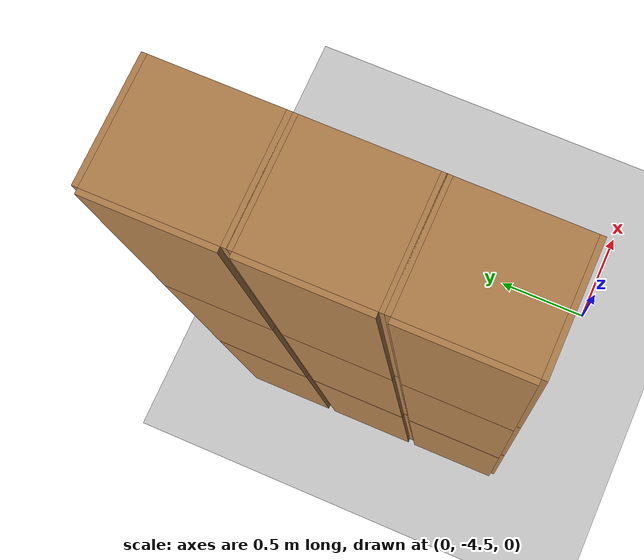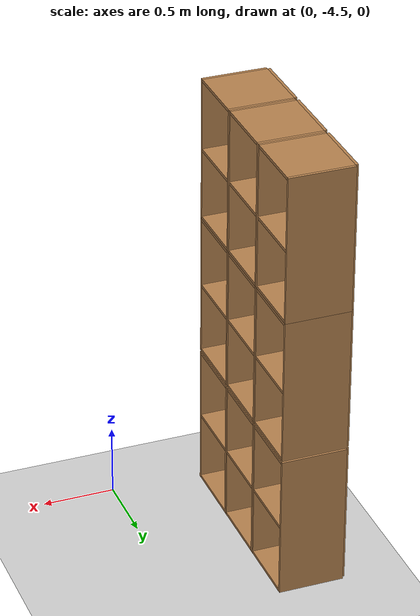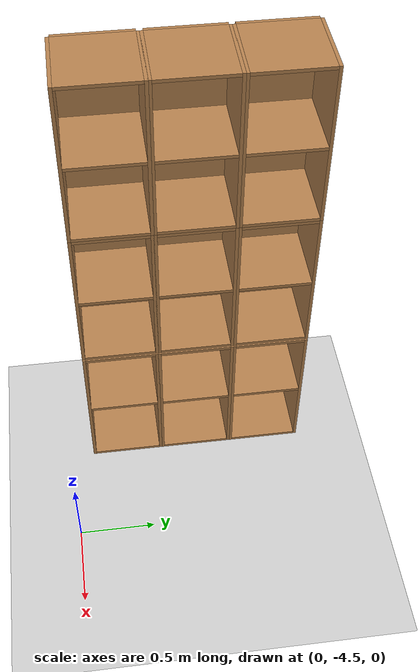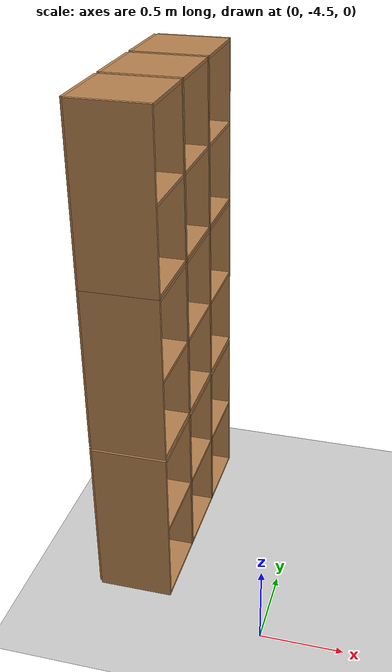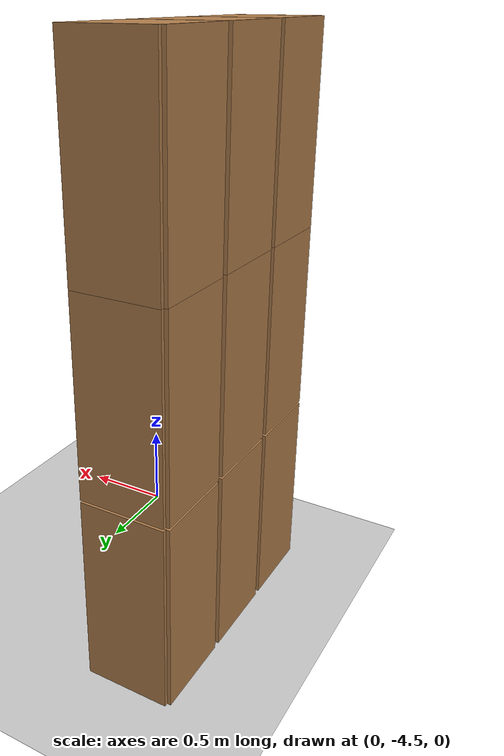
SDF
<sdf version="1.6">
 <world name="default">
  <model name="ground_plane">
   <static>1</static>
   <link name="link">
    <collision name="collision">
     <geometry><plane><normal>0 0 1</normal><size>100 100</size></plane></geometry>
     <surface>
      <contact><collide_bitmask>65535</collide_bitmask></contact>
      <friction><ode><mu>100</mu><mu2>50</mu2></ode></friction>
     </surface>
    </collision>
    <visual name="visual">
     <cast_shadows>0</cast_shadows>
     <geometry><plane><normal>0 0 1</normal><size>100 100</size></plane></geometry>
     <material>
      <script><uri>file://media/materials/scripts/gazebo.material</uri><name>Gazebo/Grey</name></script>
     </material>
    </visual>
   </link>
  </model>
  <model name="Locker18_clone_4_clone_2_clone_1_clone_clone_clone_2_clone_clone_2_clone_clone">
   <model name="Locker18">
    <model name="Locker3">
     <model name="cabinet">
      <static>1</static>
      <link name="cabinet_bottom_plate">
       <inertial>
        <pose>0 0 -1 0 -0 0</pose>
        <inertia><ixx>2.05</ixx><ixy>0</ixy><ixz>0</ixz><iyy>2.05</iyy><iyz>0</iyz><izz>2.05</izz></inertia>
        <mass>25</mass>
       </inertial>
       <collision name="cabinet_bottom_plate_geom">
        <pose>0 0 0.01 0 -0 0</pose>
        <geometry><box><size>0.45 0.45 0.02</size></box></geometry>
       </collision>
       <visual name="cabinet_bottom_plate_geom_visual">
        <pose>0 0 0.01 0 -0 0</pose>
        <geometry><box><size>0.45 0.45 0.02</size></box></geometry>
        <material>
         <script><uri>file://media/materials/scripts/gazebo.material</uri><name>Gazebo/Wood</name></script>
        </material>
       </visual>
       <collision name="cabinet_bottom_plate_geom_cabinet_back_plate">
        <pose>0.235 0 0.51 0 -0 0</pose>
        <geometry><box><size>0.02 0.45 1.02</size></box></geometry>
       </collision>
       <visual name="cabinet_bottom_plate_geom_cabinet_back_plate_visual">
        <pose>0.235 0 0.51 0 -0 0</pose>
        <geometry><box><size>0.02 0.45 1.02</size></box></geometry>
        <material>
         <script><uri>file://media/materials/scripts/gazebo.material</uri><name>Gazebo/Wood</name></script>
        </material>
       </visual>
       <collision name="cabinet_bottom_plate_geom_cabinet_left_plate">
        <pose>0 0.235 0.51 0 -0 0</pose>
        <geometry><box><size>0.45 0.02 1.02</size></box></geometry>
       </collision>
       <visual name="cabinet_bottom_plate_geom_cabinet_left_plate_visual">
        <pose>0 0.235 0.51 0 -0 0</pose>
        <geometry><box><size>0.45 0.02 1.02</size></box></geometry>
        <material>
         <script><uri>file://media/materials/scripts/gazebo.material</uri><name>Gazebo/Wood</name></script>
        </material>
       </visual>
       <collision name="cabinet_bottom_plate_geom_cabinet_middle_plate">
        <pose>0 0 0.51 0 -0 0</pose>
        <geometry><box><size>0.45 0.45 0.02</size></box></geometry>
       </collision>
       <visual name="cabinet_bottom_plate_geom_cabinet_middle_plate_visual">
        <pose>0 0 0.51 0 -0 0</pose>
        <geometry><box><size>0.45 0.45 0.02</size></box></geometry>
        <material>
         <script><uri>file://media/materials/scripts/gazebo.material</uri><name>Gazebo/Wood</name></script>
        </material>
       </visual>
       <collision name="cabinet_bottom_plate_geom_cabinet_right_plate">
        <pose>0 -0.235 0.51 0 -0 0</pose>
        <geometry><box><size>0.45 0.02 1.02</size></box></geometry>
       </collision>
       <visual name="cabinet_bottom_plate_geom_cabinet_right_plate_visual">
        <pose>0 -0.235 0.51 0 -0 0</pose>
        <geometry><box><size>0.45 0.02 1.02</size></box></geometry>
        <material>
         <script><uri>file://media/materials/scripts/gazebo.material</uri><name>Gazebo/Wood</name></script>
        </material>
       </visual>
       <collision name="cabinet_bottom_plate_geom_cabinet_top_plate">
        <pose>0 0 1.01 0 -0 0</pose>
        <geometry><box><size>0.45 0.45 0.02</size></box></geometry>
       </collision>
       <visual name="cabinet_bottom_plate_geom_cabinet_top_plate_visual">
        <pose>0 0 1.01 0 -0 0</pose>
        <geometry><box><size>0.45 0.45 0.02</size></box></geometry>
        <material>
         <script><uri>file://media/materials/scripts/gazebo.material</uri><name>Gazebo/Wood</name></script>
        </material>
       </visual>
      </link>
      <pose>-0.676968 1.45758 0 0 -0 0</pose>
     </model>
     <model name="cabinet_clone">
      <static>1</static>
      <link name="cabinet_bottom_plate">
       <inertial>
        <pose>0 0 -1 0 -0 0</pose>
        <inertia><ixx>2.05</ixx><ixy>0</ixy><ixz>0</ixz><iyy>2.05</iyy><iyz>0</iyz><izz>2.05</izz></inertia>
        <mass>25</mass>
       </inertial>
       <collision name="cabinet_bottom_plate_geom">
        <pose>0 0 0.01 0 -0 0</pose>
        <geometry><box><size>0.45 0.45 0.02</size></box></geometry>
       </collision>
       <visual name="cabinet_bottom_plate_geom_visual">
        <pose>0 0 0.01 0 -0 0</pose>
        <geometry><box><size>0.45 0.45 0.02</size></box></geometry>
        <material>
         <script><uri>file://media/materials/scripts/gazebo.material</uri><name>Gazebo/Wood</name></script>
        </material>
       </visual>
       <collision name="cabinet_bottom_plate_geom_cabinet_back_plate">
        <pose>0.235 0 0.51 0 -0 0</pose>
        <geometry><box><size>0.02 0.45 1.02</size></box></geometry>
       </collision>
       <visual name="cabinet_bottom_plate_geom_cabinet_back_plate_visual">
        <pose>0.235 0 0.51 0 -0 0</pose>
        <geometry><box><size>0.02 0.45 1.02</size></box></geometry>
        <material>
         <script><uri>file://media/materials/scripts/gazebo.material</uri><name>Gazebo/Wood</name></script>
        </material>
       </visual>
       <collision name="cabinet_bottom_plate_geom_cabinet_left_plate">
        <pose>0 0.235 0.51 0 -0 0</pose>
        <geometry><box><size>0.45 0.02 1.02</size></box></geometry>
       </collision>
       <visual name="cabinet_bottom_plate_geom_cabinet_left_plate_visual">
        <pose>0 0.235 0.51 0 -0 0</pose>
        <geometry><box><size>0.45 0.02 1.02</size></box></geometry>
        <material>
         <script><uri>file://media/materials/scripts/gazebo.material</uri><name>Gazebo/Wood</name></script>
        </material>
       </visual>
       <collision name="cabinet_bottom_plate_geom_cabinet_middle_plate">
        <pose>0 0 0.51 0 -0 0</pose>
        <geometry><box><size>0.45 0.45 0.02</size></box></geometry>
       </collision>
       <visual name="cabinet_bottom_plate_geom_cabinet_middle_plate_visual">
        <pose>0 0 0.51 0 -0 0</pose>
        <geometry><box><size>0.45 0.45 0.02</size></box></geometry>
        <material>
         <script><uri>file://media/materials/scripts/gazebo.material</uri><name>Gazebo/Wood</name></script>
        </material>
       </visual>
       <collision name="cabinet_bottom_plate_geom_cabinet_right_plate">
        <pose>0 -0.235 0.51 0 -0 0</pose>
        <geometry><box><size>0.45 0.02 1.02</size></box></geometry>
       </collision>
       <visual name="cabinet_bottom_plate_geom_cabinet_right_plate_visual">
        <pose>0 -0.235 0.51 0 -0 0</pose>
        <geometry><box><size>0.45 0.02 1.02</size></box></geometry>
        <material>
         <script><uri>file://media/materials/scripts/gazebo.material</uri><name>Gazebo/Wood</name></script>
        </material>
       </visual>
       <collision name="cabinet_bottom_plate_geom_cabinet_top_plate">
        <pose>0 0 1.01 0 -0 0</pose>
        <geometry><box><size>0.45 0.45 0.02</size></box></geometry>
       </collision>
       <visual name="cabinet_bottom_plate_geom_cabinet_top_plate_visual">
        <pose>0 0 1.01 0 -0 0</pose>
        <geometry><box><size>0.45 0.45 0.02</size></box></geometry>
        <material>
         <script><uri>file://media/materials/scripts/gazebo.material</uri><name>Gazebo/Wood</name></script>
        </material>
       </visual>
      </link>
      <pose>-0.676968 0.970971 0 0 -0 0</pose>
     </model>
     <model name="cabinet_clone_0">
      <static>1</static>
      <link name="cabinet_bottom_plate">
       <inertial>
        <pose>0 0 -1 0 -0 0</pose>
        <inertia><ixx>2.05</ixx><ixy>0</ixy><ixz>0</ixz><iyy>2.05</iyy><iyz>0</iyz><izz>2.05</izz></inertia>
        <mass>25</mass>
       </inertial>
       <collision name="cabinet_bottom_plate_geom">
        <pose>0 0 0.01 0 -0 0</pose>
        <geometry><box><size>0.45 0.45 0.02</size></box></geometry>
       </collision>
       <visual name="cabinet_bottom_plate_geom_visual">
        <pose>0 0 0.01 0 -0 0</pose>
        <geometry><box><size>0.45 0.45 0.02</size></box></geometry>
        <material>
         <script><uri>file://media/materials/scripts/gazebo.material</uri><name>Gazebo/Wood</name></script>
        </material>
       </visual>
       <collision name="cabinet_bottom_plate_geom_cabinet_back_plate">
        <pose>0.235 0 0.51 0 -0 0</pose>
        <geometry><box><size>0.02 0.45 1.02</size></box></geometry>
       </collision>
       <visual name="cabinet_bottom_plate_geom_cabinet_back_plate_visual">
        <pose>0.235 0 0.51 0 -0 0</pose>
        <geometry><box><size>0.02 0.45 1.02</size></box></geometry>
        <material>
         <script><uri>file://media/materials/scripts/gazebo.material</uri><name>Gazebo/Wood</name></script>
        </material>
       </visual>
       <collision name="cabinet_bottom_plate_geom_cabinet_left_plate">
        <pose>0 0.235 0.51 0 -0 0</pose>
        <geometry><box><size>0.45 0.02 1.02</size></box></geometry>
       </collision>
       <visual name="cabinet_bottom_plate_geom_cabinet_left_plate_visual">
        <pose>0 0.235 0.51 0 -0 0</pose>
        <geometry><box><size>0.45 0.02 1.02</size></box></geometry>
        <material>
         <script><uri>file://media/materials/scripts/gazebo.material</uri><name>Gazebo/Wood</name></script>
        </material>
       </visual>
       <collision name="cabinet_bottom_plate_geom_cabinet_middle_plate">
        <pose>0 0 0.51 0 -0 0</pose>
        <geometry><box><size>0.45 0.45 0.02</size></box></geometry>
       </collision>
       <visual name="cabinet_bottom_plate_geom_cabinet_middle_plate_visual">
        <pose>0 0 0.51 0 -0 0</pose>
        <geometry><box><size>0.45 0.45 0.02</size></box></geometry>
        <material>
         <script><uri>file://media/materials/scripts/gazebo.material</uri><name>Gazebo/Wood</name></script>
        </material>
       </visual>
       <collision name="cabinet_bottom_plate_geom_cabinet_right_plate">
        <pose>0 -0.235 0.51 0 -0 0</pose>
        <geometry><box><size>0.45 0.02 1.02</size></box></geometry>
       </collision>
       <visual name="cabinet_bottom_plate_geom_cabinet_right_plate_visual">
        <pose>0 -0.235 0.51 0 -0 0</pose>
        <geometry><box><size>0.45 0.02 1.02</size></box></geometry>
        <material>
         <script><uri>file://media/materials/scripts/gazebo.material</uri><name>Gazebo/Wood</name></script>
        </material>
       </visual>
       <collision name="cabinet_bottom_plate_geom_cabinet_top_plate">
        <pose>0 0 1.01 0 -0 0</pose>
        <geometry><box><size>0.45 0.45 0.02</size></box></geometry>
       </collision>
       <visual name="cabinet_bottom_plate_geom_cabinet_top_plate_visual">
        <pose>0 0 1.01 0 -0 0</pose>
        <geometry><box><size>0.45 0.45 0.02</size></box></geometry>
        <material>
         <script><uri>file://media/materials/scripts/gazebo.material</uri><name>Gazebo/Wood</name></script>
        </material>
       </visual>
      </link>
      <pose>-0.676968 0.48391 0 0 -0 0</pose>
     </model>
     <static>0</static>
     <pose>0 3e-06 -1.02763 0 -0 0</pose>
    </model>
    <model name="Locker3_clone">
     <model name="cabinet">
      <static>1</static>
      <link name="cabinet_bottom_plate">
       <inertial>
        <pose>0 0 -1 0 -0 0</pose>
        <inertia><ixx>2.05</ixx><ixy>0</ixy><ixz>0</ixz><iyy>2.05</iyy><iyz>0</iyz><izz>2.05</izz></inertia>
        <mass>25</mass>
       </inertial>
       <collision name="cabinet_bottom_plate_geom">
        <pose>0 0 0.01 0 -0 0</pose>
        <geometry><box><size>0.45 0.45 0.02</size></box></geometry>
       </collision>
       <visual name="cabinet_bottom_plate_geom_visual">
        <pose>0 0 0.01 0 -0 0</pose>
        <geometry><box><size>0.45 0.45 0.02</size></box></geometry>
        <material>
         <script><uri>file://media/materials/scripts/gazebo.material</uri><name>Gazebo/Wood</name></script>
        </material>
       </visual>
       <collision name="cabinet_bottom_plate_geom_cabinet_back_plate">
        <pose>0.235 0 0.51 0 -0 0</pose>
        <geometry><box><size>0.02 0.45 1.02</size></box></geometry>
       </collision>
       <visual name="cabinet_bottom_plate_geom_cabinet_back_plate_visual">
        <pose>0.235 0 0.51 0 -0 0</pose>
        <geometry><box><size>0.02 0.45 1.02</size></box></geometry>
        <material>
         <script><uri>file://media/materials/scripts/gazebo.material</uri><name>Gazebo/Wood</name></script>
        </material>
       </visual>
       <collision name="cabinet_bottom_plate_geom_cabinet_left_plate">
        <pose>0 0.235 0.51 0 -0 0</pose>
        <geometry><box><size>0.45 0.02 1.02</size></box></geometry>
       </collision>
       <visual name="cabinet_bottom_plate_geom_cabinet_left_plate_visual">
        <pose>0 0.235 0.51 0 -0 0</pose>
        <geometry><box><size>0.45 0.02 1.02</size></box></geometry>
        <material>
         <script><uri>file://media/materials/scripts/gazebo.material</uri><name>Gazebo/Wood</name></script>
        </material>
       </visual>
       <collision name="cabinet_bottom_plate_geom_cabinet_middle_plate">
        <pose>0 0 0.51 0 -0 0</pose>
        <geometry><box><size>0.45 0.45 0.02</size></box></geometry>
       </collision>
       <visual name="cabinet_bottom_plate_geom_cabinet_middle_plate_visual">
        <pose>0 0 0.51 0 -0 0</pose>
        <geometry><box><size>0.45 0.45 0.02</size></box></geometry>
        <material>
         <script><uri>file://media/materials/scripts/gazebo.material</uri><name>Gazebo/Wood</name></script>
        </material>
       </visual>
       <collision name="cabinet_bottom_plate_geom_cabinet_right_plate">
        <pose>0 -0.235 0.51 0 -0 0</pose>
        <geometry><box><size>0.45 0.02 1.02</size></box></geometry>
       </collision>
       <visual name="cabinet_bottom_plate_geom_cabinet_right_plate_visual">
        <pose>0 -0.235 0.51 0 -0 0</pose>
        <geometry><box><size>0.45 0.02 1.02</size></box></geometry>
        <material>
         <script><uri>file://media/materials/scripts/gazebo.material</uri><name>Gazebo/Wood</name></script>
        </material>
       </visual>
       <collision name="cabinet_bottom_plate_geom_cabinet_top_plate">
        <pose>0 0 1.01 0 -0 0</pose>
        <geometry><box><size>0.45 0.45 0.02</size></box></geometry>
       </collision>
       <visual name="cabinet_bottom_plate_geom_cabinet_top_plate_visual">
        <pose>0 0 1.01 0 -0 0</pose>
        <geometry><box><size>0.45 0.45 0.02</size></box></geometry>
        <material>
         <script><uri>file://media/materials/scripts/gazebo.material</uri><name>Gazebo/Wood</name></script>
        </material>
       </visual>
      </link>
      <pose>-0.676968 1.45758 0 0 -0 0</pose>
     </model>
     <model name="cabinet_clone">
      <static>1</static>
      <link name="cabinet_bottom_plate">
       <inertial>
        <pose>0 0 -1 0 -0 0</pose>
        <inertia><ixx>2.05</ixx><ixy>0</ixy><ixz>0</ixz><iyy>2.05</iyy><iyz>0</iyz><izz>2.05</izz></inertia>
        <mass>25</mass>
       </inertial>
       <collision name="cabinet_bottom_plate_geom">
        <pose>0 0 0.01 0 -0 0</pose>
        <geometry><box><size>0.45 0.45 0.02</size></box></geometry>
       </collision>
       <visual name="cabinet_bottom_plate_geom_visual">
        <pose>0 0 0.01 0 -0 0</pose>
        <geometry><box><size>0.45 0.45 0.02</size></box></geometry>
        <material>
         <script><uri>file://media/materials/scripts/gazebo.material</uri><name>Gazebo/Wood</name></script>
        </material>
       </visual>
       <collision name="cabinet_bottom_plate_geom_cabinet_back_plate">
        <pose>0.235 0 0.51 0 -0 0</pose>
        <geometry><box><size>0.02 0.45 1.02</size></box></geometry>
       </collision>
       <visual name="cabinet_bottom_plate_geom_cabinet_back_plate_visual">
        <pose>0.235 0 0.51 0 -0 0</pose>
        <geometry><box><size>0.02 0.45 1.02</size></box></geometry>
        <material>
         <script><uri>file://media/materials/scripts/gazebo.material</uri><name>Gazebo/Wood</name></script>
        </material>
       </visual>
       <collision name="cabinet_bottom_plate_geom_cabinet_left_plate">
        <pose>0 0.235 0.51 0 -0 0</pose>
        <geometry><box><size>0.45 0.02 1.02</size></box></geometry>
       </collision>
       <visual name="cabinet_bottom_plate_geom_cabinet_left_plate_visual">
        <pose>0 0.235 0.51 0 -0 0</pose>
        <geometry><box><size>0.45 0.02 1.02</size></box></geometry>
        <material>
         <script><uri>file://media/materials/scripts/gazebo.material</uri><name>Gazebo/Wood</name></script>
        </material>
       </visual>
       <collision name="cabinet_bottom_plate_geom_cabinet_middle_plate">
        <pose>0 0 0.51 0 -0 0</pose>
        <geometry><box><size>0.45 0.45 0.02</size></box></geometry>
       </collision>
       <visual name="cabinet_bottom_plate_geom_cabinet_middle_plate_visual">
        <pose>0 0 0.51 0 -0 0</pose>
        <geometry><box><size>0.45 0.45 0.02</size></box></geometry>
        <material>
         <script><uri>file://media/materials/scripts/gazebo.material</uri><name>Gazebo/Wood</name></script>
        </material>
       </visual>
       <collision name="cabinet_bottom_plate_geom_cabinet_right_plate">
        <pose>0 -0.235 0.51 0 -0 0</pose>
        <geometry><box><size>0.45 0.02 1.02</size></box></geometry>
       </collision>
       <visual name="cabinet_bottom_plate_geom_cabinet_right_plate_visual">
        <pose>0 -0.235 0.51 0 -0 0</pose>
        <geometry><box><size>0.45 0.02 1.02</size></box></geometry>
        <material>
         <script><uri>file://media/materials/scripts/gazebo.material</uri><name>Gazebo/Wood</name></script>
        </material>
       </visual>
       <collision name="cabinet_bottom_plate_geom_cabinet_top_plate">
        <pose>0 0 1.01 0 -0 0</pose>
        <geometry><box><size>0.45 0.45 0.02</size></box></geometry>
       </collision>
       <visual name="cabinet_bottom_plate_geom_cabinet_top_plate_visual">
        <pose>0 0 1.01 0 -0 0</pose>
        <geometry><box><size>0.45 0.45 0.02</size></box></geometry>
        <material>
         <script><uri>file://media/materials/scripts/gazebo.material</uri><name>Gazebo/Wood</name></script>
        </material>
       </visual>
      </link>
      <pose>-0.676968 0.970971 0 0 -0 0</pose>
     </model>
     <model name="cabinet_clone_0">
      <static>1</static>
      <link name="cabinet_bottom_plate">
       <inertial>
        <pose>0 0 -1 0 -0 0</pose>
        <inertia><ixx>2.05</ixx><ixy>0</ixy><ixz>0</ixz><iyy>2.05</iyy><iyz>0</iyz><izz>2.05</izz></inertia>
        <mass>25</mass>
       </inertial>
       <collision name="cabinet_bottom_plate_geom">
        <pose>0 0 0.01 0 -0 0</pose>
        <geometry><box><size>0.45 0.45 0.02</size></box></geometry>
       </collision>
       <visual name="cabinet_bottom_plate_geom_visual">
        <pose>0 0 0.01 0 -0 0</pose>
        <geometry><box><size>0.45 0.45 0.02</size></box></geometry>
        <material>
         <script><uri>file://media/materials/scripts/gazebo.material</uri><name>Gazebo/Wood</name></script>
        </material>
       </visual>
       <collision name="cabinet_bottom_plate_geom_cabinet_back_plate">
        <pose>0.235 0 0.51 0 -0 0</pose>
        <geometry><box><size>0.02 0.45 1.02</size></box></geometry>
       </collision>
       <visual name="cabinet_bottom_plate_geom_cabinet_back_plate_visual">
        <pose>0.235 0 0.51 0 -0 0</pose>
        <geometry><box><size>0.02 0.45 1.02</size></box></geometry>
        <material>
         <script><uri>file://media/materials/scripts/gazebo.material</uri><name>Gazebo/Wood</name></script>
        </material>
       </visual>
       <collision name="cabinet_bottom_plate_geom_cabinet_left_plate">
        <pose>0 0.235 0.51 0 -0 0</pose>
        <geometry><box><size>0.45 0.02 1.02</size></box></geometry>
       </collision>
       <visual name="cabinet_bottom_plate_geom_cabinet_left_plate_visual">
        <pose>0 0.235 0.51 0 -0 0</pose>
        <geometry><box><size>0.45 0.02 1.02</size></box></geometry>
        <material>
         <script><uri>file://media/materials/scripts/gazebo.material</uri><name>Gazebo/Wood</name></script>
        </material>
       </visual>
       <collision name="cabinet_bottom_plate_geom_cabinet_middle_plate">
        <pose>0 0 0.51 0 -0 0</pose>
        <geometry><box><size>0.45 0.45 0.02</size></box></geometry>
       </collision>
       <visual name="cabinet_bottom_plate_geom_cabinet_middle_plate_visual">
        <pose>0 0 0.51 0 -0 0</pose>
        <geometry><box><size>0.45 0.45 0.02</size></box></geometry>
        <material>
         <script><uri>file://media/materials/scripts/gazebo.material</uri><name>Gazebo/Wood</name></script>
        </material>
       </visual>
       <collision name="cabinet_bottom_plate_geom_cabinet_right_plate">
        <pose>0 -0.235 0.51 0 -0 0</pose>
        <geometry><box><size>0.45 0.02 1.02</size></box></geometry>
       </collision>
       <visual name="cabinet_bottom_plate_geom_cabinet_right_plate_visual">
        <pose>0 -0.235 0.51 0 -0 0</pose>
        <geometry><box><size>0.45 0.02 1.02</size></box></geometry>
        <material>
         <script><uri>file://media/materials/scripts/gazebo.material</uri><name>Gazebo/Wood</name></script>
        </material>
       </visual>
       <collision name="cabinet_bottom_plate_geom_cabinet_top_plate">
        <pose>0 0 1.01 0 -0 0</pose>
        <geometry><box><size>0.45 0.45 0.02</size></box></geometry>
       </collision>
       <visual name="cabinet_bottom_plate_geom_cabinet_top_plate_visual">
        <pose>0 0 1.01 0 -0 0</pose>
        <geometry><box><size>0.45 0.45 0.02</size></box></geometry>
        <material>
         <script><uri>file://media/materials/scripts/gazebo.material</uri><name>Gazebo/Wood</name></script>
        </material>
       </visual>
      </link>
      <pose>-0.676968 0.48391 0 0 -0 0</pose>
     </model>
     <static>0</static>
     <pose>0 3e-06 0.003717 0 -0 0</pose>
    </model>
    <model name="Locker3_clone_clone">
     <model name="cabinet">
      <static>1</static>
      <link name="cabinet_bottom_plate">
       <inertial>
        <pose>0 0 -1 0 -0 0</pose>
        <inertia><ixx>2.05</ixx><ixy>0</ixy><ixz>0</ixz><iyy>2.05</iyy><iyz>0</iyz><izz>2.05</izz></inertia>
        <mass>25</mass>
       </inertial>
       <collision name="cabinet_bottom_plate_geom">
        <pose>0 0 0.01 0 -0 0</pose>
        <geometry><box><size>0.45 0.45 0.02</size></box></geometry>
       </collision>
       <visual name="cabinet_bottom_plate_geom_visual">
        <pose>0 0 0.01 0 -0 0</pose>
        <geometry><box><size>0.45 0.45 0.02</size></box></geometry>
        <material>
         <script><uri>file://media/materials/scripts/gazebo.material</uri><name>Gazebo/Wood</name></script>
        </material>
       </visual>
       <collision name="cabinet_bottom_plate_geom_cabinet_back_plate">
        <pose>0.235 0 0.51 0 -0 0</pose>
        <geometry><box><size>0.02 0.45 1.02</size></box></geometry>
       </collision>
       <visual name="cabinet_bottom_plate_geom_cabinet_back_plate_visual">
        <pose>0.235 0 0.51 0 -0 0</pose>
        <geometry><box><size>0.02 0.45 1.02</size></box></geometry>
        <material>
         <script><uri>file://media/materials/scripts/gazebo.material</uri><name>Gazebo/Wood</name></script>
        </material>
       </visual>
       <collision name="cabinet_bottom_plate_geom_cabinet_left_plate">
        <pose>0 0.235 0.51 0 -0 0</pose>
        <geometry><box><size>0.45 0.02 1.02</size></box></geometry>
       </collision>
       <visual name="cabinet_bottom_plate_geom_cabinet_left_plate_visual">
        <pose>0 0.235 0.51 0 -0 0</pose>
        <geometry><box><size>0.45 0.02 1.02</size></box></geometry>
        <material>
         <script><uri>file://media/materials/scripts/gazebo.material</uri><name>Gazebo/Wood</name></script>
        </material>
       </visual>
       <collision name="cabinet_bottom_plate_geom_cabinet_middle_plate">
        <pose>0 0 0.51 0 -0 0</pose>
        <geometry><box><size>0.45 0.45 0.02</size></box></geometry>
       </collision>
       <visual name="cabinet_bottom_plate_geom_cabinet_middle_plate_visual">
        <pose>0 0 0.51 0 -0 0</pose>
        <geometry><box><size>0.45 0.45 0.02</size></box></geometry>
        <material>
         <script><uri>file://media/materials/scripts/gazebo.material</uri><name>Gazebo/Wood</name></script>
        </material>
       </visual>
       <collision name="cabinet_bottom_plate_geom_cabinet_right_plate">
        <pose>0 -0.235 0.51 0 -0 0</pose>
        <geometry><box><size>0.45 0.02 1.02</size></box></geometry>
       </collision>
       <visual name="cabinet_bottom_plate_geom_cabinet_right_plate_visual">
        <pose>0 -0.235 0.51 0 -0 0</pose>
        <geometry><box><size>0.45 0.02 1.02</size></box></geometry>
        <material>
         <script><uri>file://media/materials/scripts/gazebo.material</uri><name>Gazebo/Wood</name></script>
        </material>
       </visual>
       <collision name="cabinet_bottom_plate_geom_cabinet_top_plate">
        <pose>0 0 1.01 0 -0 0</pose>
        <geometry><box><size>0.45 0.45 0.02</size></box></geometry>
       </collision>
       <visual name="cabinet_bottom_plate_geom_cabinet_top_plate_visual">
        <pose>0 0 1.01 0 -0 0</pose>
        <geometry><box><size>0.45 0.45 0.02</size></box></geometry>
        <material>
         <script><uri>file://media/materials/scripts/gazebo.material</uri><name>Gazebo/Wood</name></script>
        </material>
       </visual>
      </link>
      <pose>-0.676968 1.45758 0 0 -0 0</pose>
     </model>
     <model name="cabinet_clone">
      <static>1</static>
      <link name="cabinet_bottom_plate">
       <inertial>
        <pose>0 0 -1 0 -0 0</pose>
        <inertia><ixx>2.05</ixx><ixy>0</ixy><ixz>0</ixz><iyy>2.05</iyy><iyz>0</iyz><izz>2.05</izz></inertia>
        <mass>25</mass>
       </inertial>
       <collision name="cabinet_bottom_plate_geom">
        <pose>0 0 0.01 0 -0 0</pose>
        <geometry><box><size>0.45 0.45 0.02</size></box></geometry>
       </collision>
       <visual name="cabinet_bottom_plate_geom_visual">
        <pose>0 0 0.01 0 -0 0</pose>
        <geometry><box><size>0.45 0.45 0.02</size></box></geometry>
        <material>
         <script><uri>file://media/materials/scripts/gazebo.material</uri><name>Gazebo/Wood</name></script>
        </material>
       </visual>
       <collision name="cabinet_bottom_plate_geom_cabinet_back_plate">
        <pose>0.235 0 0.51 0 -0 0</pose>
        <geometry><box><size>0.02 0.45 1.02</size></box></geometry>
       </collision>
       <visual name="cabinet_bottom_plate_geom_cabinet_back_plate_visual">
        <pose>0.235 0 0.51 0 -0 0</pose>
        <geometry><box><size>0.02 0.45 1.02</size></box></geometry>
        <material>
         <script><uri>file://media/materials/scripts/gazebo.material</uri><name>Gazebo/Wood</name></script>
        </material>
       </visual>
       <collision name="cabinet_bottom_plate_geom_cabinet_left_plate">
        <pose>0 0.235 0.51 0 -0 0</pose>
        <geometry><box><size>0.45 0.02 1.02</size></box></geometry>
       </collision>
       <visual name="cabinet_bottom_plate_geom_cabinet_left_plate_visual">
        <pose>0 0.235 0.51 0 -0 0</pose>
        <geometry><box><size>0.45 0.02 1.02</size></box></geometry>
        <material>
         <script><uri>file://media/materials/scripts/gazebo.material</uri><name>Gazebo/Wood</name></script>
        </material>
       </visual>
       <collision name="cabinet_bottom_plate_geom_cabinet_middle_plate">
        <pose>0 0 0.51 0 -0 0</pose>
        <geometry><box><size>0.45 0.45 0.02</size></box></geometry>
       </collision>
       <visual name="cabinet_bottom_plate_geom_cabinet_middle_plate_visual">
        <pose>0 0 0.51 0 -0 0</pose>
        <geometry><box><size>0.45 0.45 0.02</size></box></geometry>
        <material>
         <script><uri>file://media/materials/scripts/gazebo.material</uri><name>Gazebo/Wood</name></script>
        </material>
       </visual>
       <collision name="cabinet_bottom_plate_geom_cabinet_right_plate">
        <pose>0 -0.235 0.51 0 -0 0</pose>
        <geometry><box><size>0.45 0.02 1.02</size></box></geometry>
       </collision>
       <visual name="cabinet_bottom_plate_geom_cabinet_right_plate_visual">
        <pose>0 -0.235 0.51 0 -0 0</pose>
        <geometry><box><size>0.45 0.02 1.02</size></box></geometry>
        <material>
         <script><uri>file://media/materials/scripts/gazebo.material</uri><name>Gazebo/Wood</name></script>
        </material>
       </visual>
       <collision name="cabinet_bottom_plate_geom_cabinet_top_plate">
        <pose>0 0 1.01 0 -0 0</pose>
        <geometry><box><size>0.45 0.45 0.02</size></box></geometry>
       </collision>
       <visual name="cabinet_bottom_plate_geom_cabinet_top_plate_visual">
        <pose>0 0 1.01 0 -0 0</pose>
        <geometry><box><size>0.45 0.45 0.02</size></box></geometry>
        <material>
         <script><uri>file://media/materials/scripts/gazebo.material</uri><name>Gazebo/Wood</name></script>
        </material>
       </visual>
      </link>
      <pose>-0.676968 0.970971 0 0 -0 0</pose>
     </model>
     <model name="cabinet_clone_0">
      <static>1</static>
      <link name="cabinet_bottom_plate">
       <inertial>
        <pose>0 0 -1 0 -0 0</pose>
        <inertia><ixx>2.05</ixx><ixy>0</ixy><ixz>0</ixz><iyy>2.05</iyy><iyz>0</iyz><izz>2.05</izz></inertia>
        <mass>25</mass>
       </inertial>
       <collision name="cabinet_bottom_plate_geom">
        <pose>0 0 0.01 0 -0 0</pose>
        <geometry><box><size>0.45 0.45 0.02</size></box></geometry>
       </collision>
       <visual name="cabinet_bottom_plate_geom_visual">
        <pose>0 0 0.01 0 -0 0</pose>
        <geometry><box><size>0.45 0.45 0.02</size></box></geometry>
        <material>
         <script><uri>file://media/materials/scripts/gazebo.material</uri><name>Gazebo/Wood</name></script>
        </material>
       </visual>
       <collision name="cabinet_bottom_plate_geom_cabinet_back_plate">
        <pose>0.235 0 0.51 0 -0 0</pose>
        <geometry><box><size>0.02 0.45 1.02</size></box></geometry>
       </collision>
       <visual name="cabinet_bottom_plate_geom_cabinet_back_plate_visual">
        <pose>0.235 0 0.51 0 -0 0</pose>
        <geometry><box><size>0.02 0.45 1.02</size></box></geometry>
        <material>
         <script><uri>file://media/materials/scripts/gazebo.material</uri><name>Gazebo/Wood</name></script>
        </material>
       </visual>
       <collision name="cabinet_bottom_plate_geom_cabinet_left_plate">
        <pose>0 0.235 0.51 0 -0 0</pose>
        <geometry><box><size>0.45 0.02 1.02</size></box></geometry>
       </collision>
       <visual name="cabinet_bottom_plate_geom_cabinet_left_plate_visual">
        <pose>0 0.235 0.51 0 -0 0</pose>
        <geometry><box><size>0.45 0.02 1.02</size></box></geometry>
        <material>
         <script><uri>file://media/materials/scripts/gazebo.material</uri><name>Gazebo/Wood</name></script>
        </material>
       </visual>
       <collision name="cabinet_bottom_plate_geom_cabinet_middle_plate">
        <pose>0 0 0.51 0 -0 0</pose>
        <geometry><box><size>0.45 0.45 0.02</size></box></geometry>
       </collision>
       <visual name="cabinet_bottom_plate_geom_cabinet_middle_plate_visual">
        <pose>0 0 0.51 0 -0 0</pose>
        <geometry><box><size>0.45 0.45 0.02</size></box></geometry>
        <material>
         <script><uri>file://media/materials/scripts/gazebo.material</uri><name>Gazebo/Wood</name></script>
        </material>
       </visual>
       <collision name="cabinet_bottom_plate_geom_cabinet_right_plate">
        <pose>0 -0.235 0.51 0 -0 0</pose>
        <geometry><box><size>0.45 0.02 1.02</size></box></geometry>
       </collision>
       <visual name="cabinet_bottom_plate_geom_cabinet_right_plate_visual">
        <pose>0 -0.235 0.51 0 -0 0</pose>
        <geometry><box><size>0.45 0.02 1.02</size></box></geometry>
        <material>
         <script><uri>file://media/materials/scripts/gazebo.material</uri><name>Gazebo/Wood</name></script>
        </material>
       </visual>
       <collision name="cabinet_bottom_plate_geom_cabinet_top_plate">
        <pose>0 0 1.01 0 -0 0</pose>
        <geometry><box><size>0.45 0.45 0.02</size></box></geometry>
       </collision>
       <visual name="cabinet_bottom_plate_geom_cabinet_top_plate_visual">
        <pose>0 0 1.01 0 -0 0</pose>
        <geometry><box><size>0.45 0.45 0.02</size></box></geometry>
        <material>
         <script><uri>file://media/materials/scripts/gazebo.material</uri><name>Gazebo/Wood</name></script>
        </material>
       </visual>
      </link>
      <pose>-0.676968 0.48391 0 0 -0 0</pose>
     </model>
     <static>0</static>
     <pose>0 3e-06 1.02391 0 -0 0</pose>
    </model>
    <static>0</static>
    <pose>-0 4e-06 4e-06 0 -0 0</pose>
   </model>
   <static>0</static>
   <pose>-1.4992 -2.66732 1.08672 0 -0 3.14119</pose>
  </model>
 </world>
</sdf>
